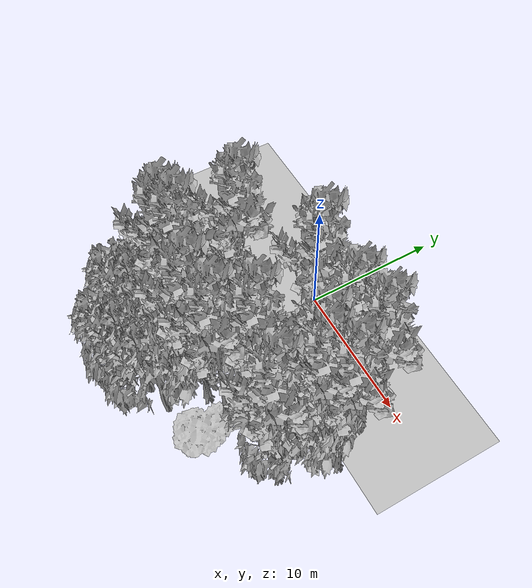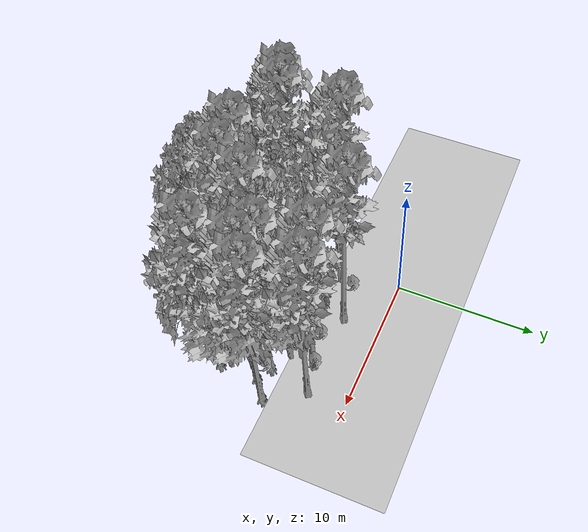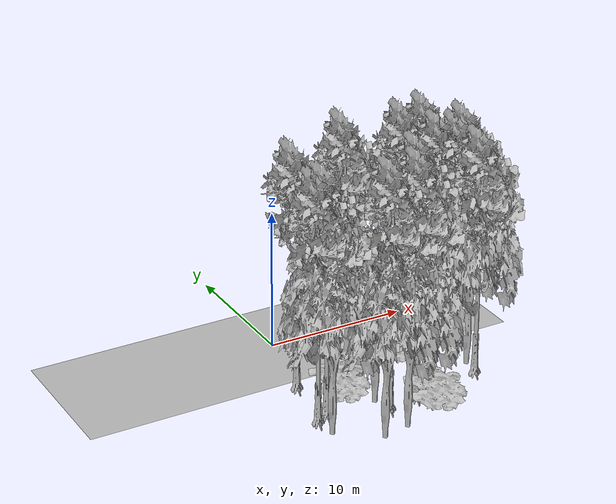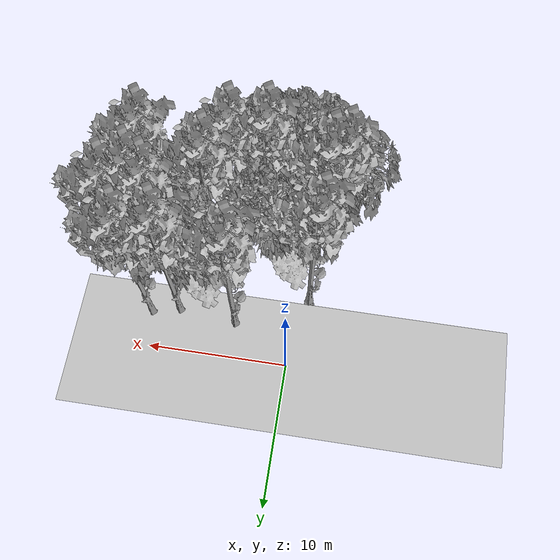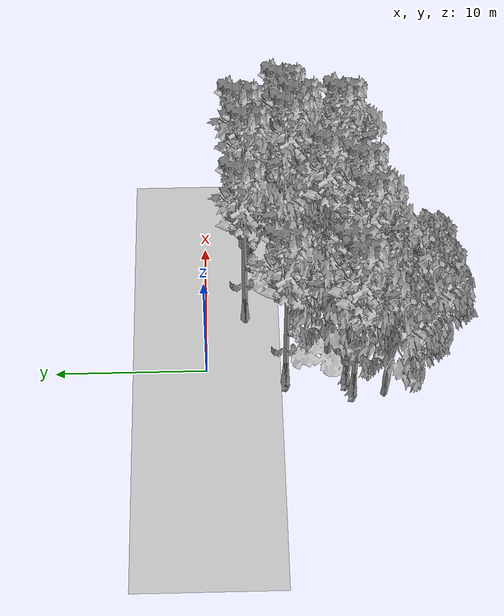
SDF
<sdf version="1.7">
 <world name="default">
  <model name="ground_plane">
   <static>1</static>
   <link name="link">
    <collision name="collision">
     <pose>-50 0 0 0 -0 0</pose>
     <geometry><plane><normal>0 0 1</normal><size>100 100</size></plane></geometry>
     <surface><contact><ode><min_depth>0.01</min_depth><max_vel>0</max_vel></ode></contact></surface>
    </collision>
    <visual name="grass">
     <cast_shadows>0</cast_shadows>
     <geometry>
      <mesh>
       <scale>0.5814285714285714 0.18142857142857144 0.1</scale>
       <uri>file://grass_plane/meshes/grass_plane.dae</uri>
      </mesh>
     </geometry>
    </visual>
   </link>
  </model>
  <model name="Tree 8">
   <static>1</static>
   <pose>1.928067051756159 -8.094480789666445 0 1.57079 -0 0</pose>
   <link name="link">
    <collision name="collision">
     <geometry><mesh><scale>3.5 5 3.5</scale><uri>model://tree_2/meshes/tree_2.obj</uri></mesh></geometry>
    </collision>
    <visual name="visual">
     <geometry><mesh><scale>3.5 5 3.5</scale><uri>model://tree_2/meshes/tree_2.obj</uri></mesh></geometry>
    </visual>
   </link>
  </model>
  <model name="Tree 12">
   <static>1</static>
   <pose>5.316116097098707 -11.90297776175353 0 1.57079 -0 0</pose>
   <link name="link">
    <collision name="collision">
     <geometry><mesh><scale>4 2.5 4</scale><uri>model://tree_1/meshes/tree_1.obj</uri></mesh></geometry>
    </collision>
    <visual name="visual">
     <geometry><mesh><scale>4 2.5 4</scale><uri>model://tree_1/meshes/tree_1.obj</uri></mesh></geometry>
    </visual>
   </link>
  </model>
  <model name="Tree 13">
   <static>1</static>
   <pose>2.4962927978569525 -13.172962160027453 0 1.57079 -0 0</pose>
   <link name="link">
    <collision name="collision">
     <geometry><mesh><scale>3.5 5 3.5</scale><uri>model://tree_2/meshes/tree_2.obj</uri></mesh></geometry>
    </collision>
    <visual name="visual">
     <geometry><mesh><scale>3.5 5 3.5</scale><uri>model://tree_2/meshes/tree_2.obj</uri></mesh></geometry>
    </visual>
   </link>
  </model>
  <model name="Tree 25">
   <static>1</static>
   <pose>0.5691270658067111 -13.588676001851574 0 1.57079 -0 0</pose>
   <link name="link">
    <collision name="collision">
     <geometry><mesh><scale>3.5 5 3.5</scale><uri>model://tree_2/meshes/tree_2.obj</uri></mesh></geometry>
    </collision>
    <visual name="visual">
     <geometry><mesh><scale>3.5 5 3.5</scale><uri>model://tree_2/meshes/tree_2.obj</uri></mesh></geometry>
    </visual>
   </link>
  </model>
  <model name="Tree 29">
   <static>1</static>
   <pose>10.450314175094896 -6.321341003616984 0 1.57079 -0 0</pose>
   <link name="link">
    <collision name="collision">
     <geometry><mesh><scale>3.5 5 3.5</scale><uri>model://tree_9/meshes/tree_9.obj</uri></mesh></geometry>
    </collision>
    <visual name="visual">
     <geometry><mesh><scale>3.5 5 3.5</scale><uri>model://tree_9/meshes/tree_9.obj</uri></mesh></geometry>
    </visual>
   </link>
  </model>
  <model name="Tree 31">
   <static>1</static>
   <pose>0.11112618233485705 -7.958130080903205 0 1.57079 -0 0</pose>
   <link name="link">
    <collision name="collision">
     <geometry><mesh><scale>3.5 5 3.5</scale><uri>model://tree_2/meshes/tree_2.obj</uri></mesh></geometry>
    </collision>
    <visual name="visual">
     <geometry><mesh><scale>3.5 5 3.5</scale><uri>model://tree_2/meshes/tree_2.obj</uri></mesh></geometry>
    </visual>
   </link>
  </model>
  <model name="Tree 59">
   <static>1</static>
   <pose>9.804459546936933 -6.893472536614691 0 1.57079 -0 0</pose>
   <link name="link">
    <collision name="collision">
     <geometry><mesh><scale>3.5 5 3.5</scale><uri>model://tree_2/meshes/tree_2.obj</uri></mesh></geometry>
    </collision>
    <visual name="visual">
     <geometry><mesh><scale>3.5 5 3.5</scale><uri>model://tree_2/meshes/tree_2.obj</uri></mesh></geometry>
    </visual>
   </link>
  </model>
  <model name="Tree 75">
   <static>1</static>
   <pose>8.296020331979953 -3.073296791481299 0 1.57079 -0 0</pose>
   <link name="link">
    <collision name="collision">
     <geometry><mesh><scale>3.5 5 3.5</scale><uri>model://tree_9/meshes/tree_9.obj</uri></mesh></geometry>
    </collision>
    <visual name="visual">
     <geometry><mesh><scale>3.5 5 3.5</scale><uri>model://tree_9/meshes/tree_9.obj</uri></mesh></geometry>
    </visual>
   </link>
  </model>
  <model name="Tree 81">
   <static>1</static>
   <pose>10.408305497439471 -9.109267931708922 0 1.57079 -0 0</pose>
   <link name="link">
    <collision name="collision">
     <geometry><mesh><scale>3.5 5 3.5</scale><uri>model://tree_9/meshes/tree_9.obj</uri></mesh></geometry>
    </collision>
    <visual name="visual">
     <geometry><mesh><scale>3.5 5 3.5</scale><uri>model://tree_9/meshes/tree_9.obj</uri></mesh></geometry>
    </visual>
   </link>
  </model>
  <model name="Tree 104">
   <static>1</static>
   <pose>10.290354420964 -2.6244502917817094 0 1.57079 -0 0</pose>
   <link name="link">
    <collision name="collision">
     <geometry><mesh><scale>3.5 5 3.5</scale><uri>model://tree_9/meshes/tree_9.obj</uri></mesh></geometry>
    </collision>
    <visual name="visual">
     <geometry><mesh><scale>3.5 5 3.5</scale><uri>model://tree_9/meshes/tree_9.obj</uri></mesh></geometry>
    </visual>
   </link>
  </model>
  <model name="Tree 108">
   <static>1</static>
   <pose>6.361925723181436 -7.98581527534663 0 1.57079 -0 0</pose>
   <link name="link">
    <collision name="collision">
     <geometry><mesh><scale>3.5 5 3.5</scale><uri>model://tree_9/meshes/tree_9.obj</uri></mesh></geometry>
    </collision>
    <visual name="visual">
     <geometry><mesh><scale>3.5 5 3.5</scale><uri>model://tree_9/meshes/tree_9.obj</uri></mesh></geometry>
    </visual>
   </link>
  </model>
  <model name="Tree 126">
   <static>1</static>
   <pose>11.666931532045218 -5.338253650486589 0 1.57079 -0 0</pose>
   <link name="link">
    <collision name="collision">
     <geometry><mesh><scale>3.5 5 3.5</scale><uri>model://tree_9/meshes/tree_9.obj</uri></mesh></geometry>
    </collision>
    <visual name="visual">
     <geometry><mesh><scale>3.5 5 3.5</scale><uri>model://tree_9/meshes/tree_9.obj</uri></mesh></geometry>
    </visual>
   </link>
  </model>
  <model name="Tree 163">
   <static>1</static>
   <pose>-2.1261897372711758 -11.613013509146626 0 1.57079 -0 0</pose>
   <link name="link">
    <collision name="collision">
     <geometry><mesh><scale>3.5 5 3.5</scale><uri>model://tree_2/meshes/tree_2.obj</uri></mesh></geometry>
    </collision>
    <visual name="visual">
     <geometry><mesh><scale>3.5 5 3.5</scale><uri>model://tree_2/meshes/tree_2.obj</uri></mesh></geometry>
    </visual>
   </link>
  </model>
  <model name="Tree 170">
   <static>1</static>
   <pose>0.39214283638821 -8.071265566672347 0 1.57079 -0 0</pose>
   <link name="link">
    <collision name="collision">
     <geometry><mesh><scale>4 2.5 4</scale><uri>model://tree_1/meshes/tree_1.obj</uri></mesh></geometry>
    </collision>
    <visual name="visual">
     <geometry><mesh><scale>4 2.5 4</scale><uri>model://tree_1/meshes/tree_1.obj</uri></mesh></geometry>
    </visual>
   </link>
  </model>
  <model name="Tree 202">
   <static>1</static>
   <pose>5.213938947381926 -10.034615778086753 0 1.57079 -0 0</pose>
   <link name="link">
    <collision name="collision">
     <geometry><mesh><scale>3.5 5 3.5</scale><uri>model://tree_9/meshes/tree_9.obj</uri></mesh></geometry>
    </collision>
    <visual name="visual">
     <geometry><mesh><scale>3.5 5 3.5</scale><uri>model://tree_9/meshes/tree_9.obj</uri></mesh></geometry>
    </visual>
   </link>
  </model>
  <model name="Tree 204">
   <static>1</static>
   <pose>6.525437749520911 -5.676818480091949 0 1.57079 -0 0</pose>
   <link name="link">
    <collision name="collision">
     <geometry><mesh><scale>4 2.5 4</scale><uri>model://tree_1/meshes/tree_1.obj</uri></mesh></geometry>
    </collision>
    <visual name="visual">
     <geometry><mesh><scale>4 2.5 4</scale><uri>model://tree_1/meshes/tree_1.obj</uri></mesh></geometry>
    </visual>
   </link>
  </model>
  <model name="Tree 207">
   <static>1</static>
   <pose>-0.9929664582282527 -5.151152367060288 0 1.57079 -0 0</pose>
   <link name="link">
    <collision name="collision">
     <geometry><mesh><scale>3.5 5 3.5</scale><uri>model://tree_9/meshes/tree_9.obj</uri></mesh></geometry>
    </collision>
    <visual name="visual">
     <geometry><mesh><scale>3.5 5 3.5</scale><uri>model://tree_9/meshes/tree_9.obj</uri></mesh></geometry>
    </visual>
   </link>
  </model>
  <model name="Tree 209">
   <static>1</static>
   <pose>-1.8862942804729812 -9.521236406282897 0 1.57079 -0 0</pose>
   <link name="link">
    <collision name="collision">
     <geometry><mesh><scale>3.5 5 3.5</scale><uri>model://tree_9/meshes/tree_9.obj</uri></mesh></geometry>
    </collision>
    <visual name="visual">
     <geometry><mesh><scale>3.5 5 3.5</scale><uri>model://tree_9/meshes/tree_9.obj</uri></mesh></geometry>
    </visual>
   </link>
  </model>
  <model name="Tree 221">
   <static>1</static>
   <pose>8.06281135137305 -4.896033164293588 0 1.57079 -0 0</pose>
   <link name="link">
    <collision name="collision">
     <geometry><mesh><scale>3.5 5 3.5</scale><uri>model://tree_2/meshes/tree_2.obj</uri></mesh></geometry>
    </collision>
    <visual name="visual">
     <geometry><mesh><scale>3.5 5 3.5</scale><uri>model://tree_2/meshes/tree_2.obj</uri></mesh></geometry>
    </visual>
   </link>
  </model>
  <model name="Tree 253">
   <static>1</static>
   <pose>-1.0203745728558644 -9.096373114970032 0 1.57079 -0 0</pose>
   <link name="link">
    <collision name="collision">
     <geometry><mesh><scale>3.5 5 3.5</scale><uri>model://tree_9/meshes/tree_9.obj</uri></mesh></geometry>
    </collision>
    <visual name="visual">
     <geometry><mesh><scale>3.5 5 3.5</scale><uri>model://tree_9/meshes/tree_9.obj</uri></mesh></geometry>
    </visual>
   </link>
  </model>
  <model name="Tree 271">
   <static>1</static>
   <pose>10.1678912410894 -8.351935425563408 0 1.57079 -0 0</pose>
   <link name="link">
    <collision name="collision">
     <geometry><mesh><scale>3.5 5 3.5</scale><uri>model://tree_2/meshes/tree_2.obj</uri></mesh></geometry>
    </collision>
    <visual name="visual">
     <geometry><mesh><scale>3.5 5 3.5</scale><uri>model://tree_2/meshes/tree_2.obj</uri></mesh></geometry>
    </visual>
   </link>
  </model>
  <model name="Tree 286">
   <static>1</static>
   <pose>2.240264056820905 -9.583535743423914 0 1.57079 -0 0</pose>
   <link name="link">
    <collision name="collision">
     <geometry><mesh><scale>3.5 5 3.5</scale><uri>model://tree_2/meshes/tree_2.obj</uri></mesh></geometry>
    </collision>
    <visual name="visual">
     <geometry><mesh><scale>3.5 5 3.5</scale><uri>model://tree_2/meshes/tree_2.obj</uri></mesh></geometry>
    </visual>
   </link>
  </model>
  <model name="Tree 287">
   <static>1</static>
   <pose>9.382140384084593 -5.763550705135499 0 1.57079 -0 0</pose>
   <link name="link">
    <collision name="collision">
     <geometry><mesh><scale>3.5 5 3.5</scale><uri>model://tree_9/meshes/tree_9.obj</uri></mesh></geometry>
    </collision>
    <visual name="visual">
     <geometry><mesh><scale>3.5 5 3.5</scale><uri>model://tree_9/meshes/tree_9.obj</uri></mesh></geometry>
    </visual>
   </link>
  </model>
  <model name="Tree 290">
   <static>1</static>
   <pose>2.963488012794677 -10.391946099154664 0 1.57079 -0 0</pose>
   <link name="link">
    <collision name="collision">
     <geometry><mesh><scale>3.5 5 3.5</scale><uri>model://tree_9/meshes/tree_9.obj</uri></mesh></geometry>
    </collision>
    <visual name="visual">
     <geometry><mesh><scale>3.5 5 3.5</scale><uri>model://tree_9/meshes/tree_9.obj</uri></mesh></geometry>
    </visual>
   </link>
  </model>
  <model name="Tree 297">
   <static>1</static>
   <pose>4.105667508238952 -2.6229455508147534 0 1.57079 -0 0</pose>
   <link name="link">
    <collision name="collision">
     <geometry><mesh><scale>3.5 5 3.5</scale><uri>model://tree_9/meshes/tree_9.obj</uri></mesh></geometry>
    </collision>
    <visual name="visual">
     <geometry><mesh><scale>3.5 5 3.5</scale><uri>model://tree_9/meshes/tree_9.obj</uri></mesh></geometry>
    </visual>
   </link>
  </model>
 </world>
</sdf>
